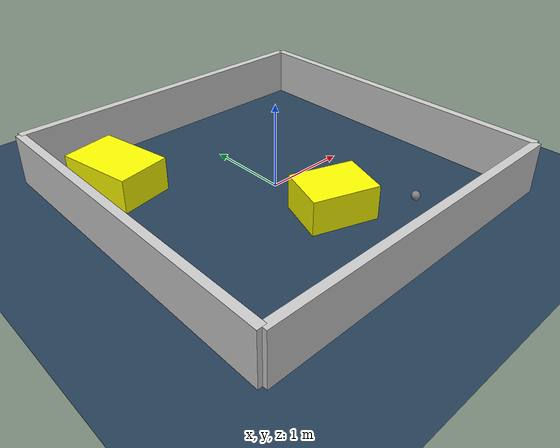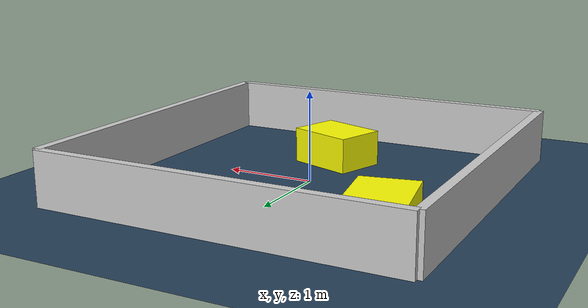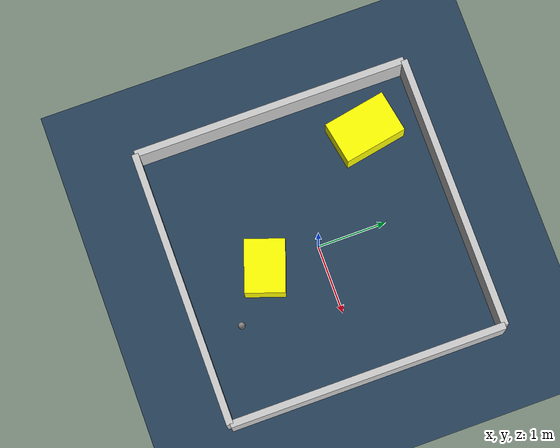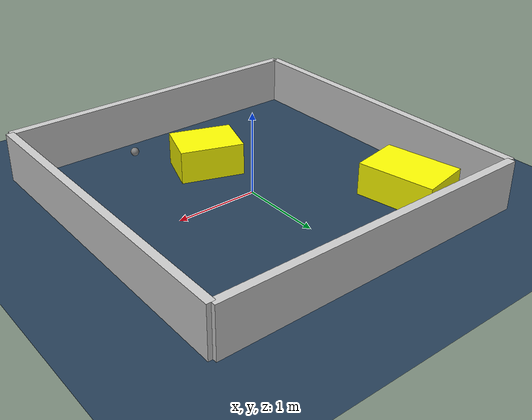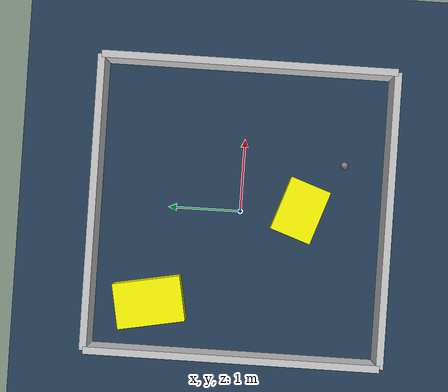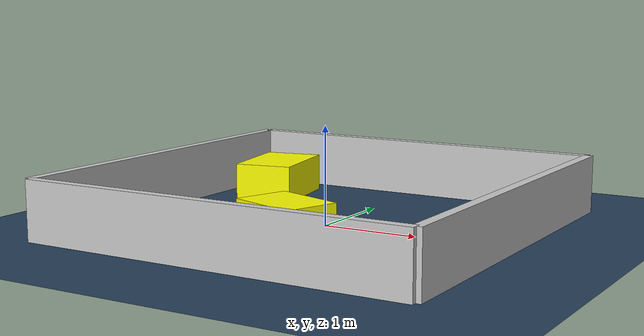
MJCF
<?xml version="1.0" ?>
<mujoco model="generated_environment">
  <option timestep="0.01" integrator="RK4" cone="elliptic"/>
  <default>
    <geom density="1"/>
  </default>
  <asset>
    <texture builtin="gradient" height="3072" rgb1="0.3 0.5 0.7" rgb2="0 0 0" type="skybox" width="512"/>
    <texture builtin="checker" height="300" mark="edge" markrgb="0.8 0.8 0.8" name="groundplane" rgb1="0.2 0.3 0.4" rgb2="0.1 0.2 0.3" type="2d" width="300"/>
    <material name="groundplane" reflectance="0.2" texrepeat="5 5" texture="groundplane" texuniform="true"/>
    <material name="robot" rgba="0.0 1.0 0.0 1"/>
  </asset>
  <worldbody>
    <light dir="0 0 -1" directional="true" pos="0 0 1.5"/>
    <geom condim="4" friction="1.0 0.005 0.001" material="groundplane" name="floor" size="0 0 0.05" type="plane"/>
    <body name="walls">
      <geom name="wall_1" condim="4" pos="-2.0 0.0 0.3" rgba="0.800000011920929 0.800000011920929 0.800000011920929 1.0" size="0.05 2.0 0.3" type="box"/>
      <geom name="wall_2" condim="4" pos="2.0 0.0 0.3" rgba="0.800000011920929 0.800000011920929 0.800000011920929 1.0" size="0.05 2.0 0.3" type="box"/>
      <geom name="wall_3" condim="4" pos="0.0 -2.0 0.3" rgba="0.800000011920929 0.800000011920929 0.800000011920929 1.0" size="2.0 0.05 0.3" type="box"/>
      <geom name="wall_4" condim="4" pos="0.0 2.0 0.3" rgba="0.800000011920929 0.800000011920929 0.800000011920929 1.0" size="2.0 0.05 0.3" type="box"/>
    </body>
    <body name="robot">
      <joint name="joint_x" type="slide" pos="0 0 0" axis="1 0 0"/>
      <joint name="joint_y" type="slide" pos="0 0 0" axis="0 1 0"/>
      <geom name="robot" type="sphere" pos="0.7208224313441742 -1.3950978889299013 0.2" size="0.05" mass="5." friction="1.0 0.005 0.0001" condim="4"/>
      <site name="sensor_ball"/>
    </body>
    <body name="obstacle_1_movable">
      <geom name="obstacle_1_movable" condim="4" pos="-1.3223277786330538 1.1726121282606372 0.2" euler="0 0 10.778254267614349" friction="1.0 0.005 0.001" rgba="1 1 0 1" size="0.3128021754059807 0.4650473528736439 0.2" type="box" mass="0.1"/>
      <joint type="free"/>
    </body>
    <body name="obstacle_2_movable">
      <geom name="obstacle_2_movable" condim="4" pos="0.06474481340034766 -0.8179036626575135 0.2" euler="0 0 340.9864412189428" friction="1.0 0.005 0.001" rgba="1 1 0 1" size="0.38336378876966215 0.2893049003217921 0.2" type="box" mass="0.1"/>
      <joint type="free"/>
    </body>
  </worldbody>
  <actuator>
    <motor name="actuator_x" joint="joint_x" gear="1" ctrlrange="-1 1"/>
    <motor name="actuator_y" joint="joint_y" gear="1" ctrlrange="-1 1"/>
  </actuator>
</mujoco>
